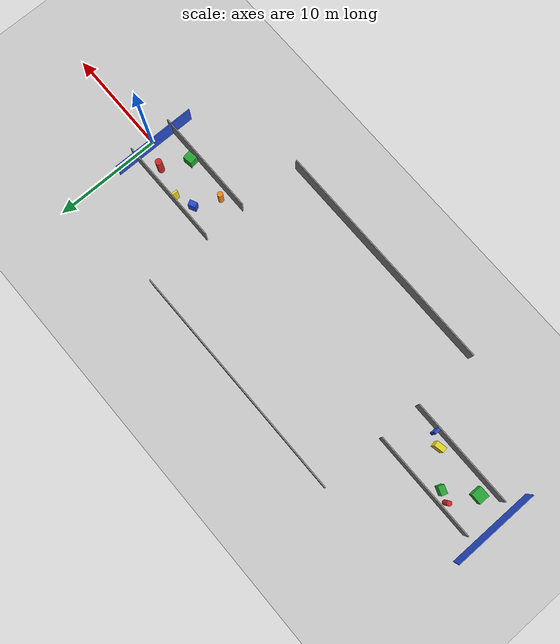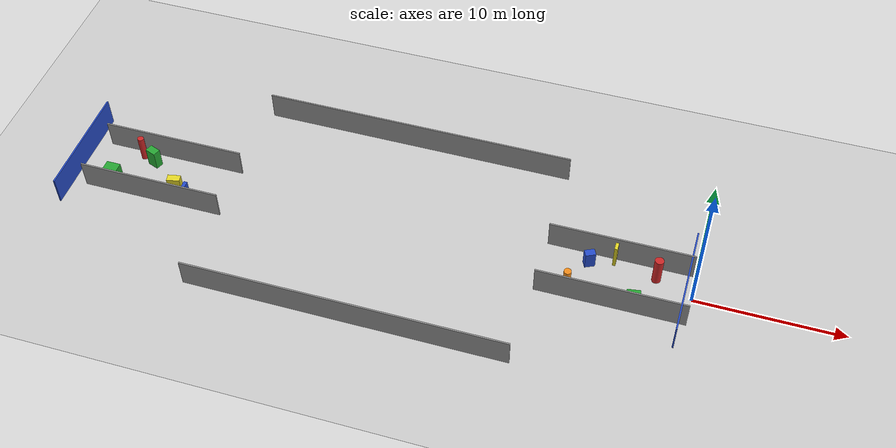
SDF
<?xml version="1.0" ?>
<sdf version="1.6">
  <world name="end_feature_wide_mid_world">
    <include><uri>model://sun</uri></include>
    <include><uri>model://ground_plane</uri></include>

    <!-- Narrow, feature-rich start zone -->
    <model name="start_left_wall">
      <static>true</static>
      <pose>-5.0 2.0 1.0 0 0 0</pose>
      <link name="link">
        <collision name="collision"><geometry><box><size>10.0 0.1 2.0</size></box></geometry></collision>
        <visual name="visual"><geometry><box><size>10.0 0.1 2.0</size></box></geometry><material><script><name>Gazebo/Grey</name></script></material></visual>
      </link>
    </model>

    <model name="start_right_wall">
      <static>true</static>
      <pose>-5.0 -2.0 1.0 0 0 0</pose>
      <link name="link">
        <collision name="collision"><geometry><box><size>10.0 0.1 2.0</size></box></geometry></collision>
        <visual name="visual"><geometry><box><size>10.0 0.1 2.0</size></box></geometry><material><script><name>Gazebo/Grey</name></script></material></visual>
      </link>
    </model>

    <!-- Wide, sparse middle zone: walls pushed outside 5m lidar range -->
    <model name="mid_left_wall_far">
      <static>true</static>
      <pose>-21.0 8.0 1.0 0 0 0</pose>
      <link name="link">
        <collision name="collision"><geometry><box><size>22.0 0.1 2.0</size></box></geometry></collision>
        <visual name="visual"><geometry><box><size>22.0 0.1 2.0</size></box></geometry><material><script><name>Gazebo/Grey</name></script></material></visual>
      </link>
    </model>

    <model name="mid_right_wall_far">
      <static>true</static>
      <pose>-21.0 -8.0 1.0 0 0 0</pose>
      <link name="link">
        <collision name="collision"><geometry><box><size>22.0 0.1 2.0</size></box></geometry></collision>
        <visual name="visual"><geometry><box><size>22.0 0.1 2.0</size></box></geometry><material><script><name>Gazebo/Grey</name></script></material></visual>
      </link>
    </model>

    <!-- Narrow, feature-rich goal zone -->
    <model name="goal_left_wall">
      <static>true</static>
      <pose>-37.0 2.0 1.0 0 0 0</pose>
      <link name="link">
        <collision name="collision"><geometry><box><size>10.0 0.1 2.0</size></box></geometry></collision>
        <visual name="visual"><geometry><box><size>10.0 0.1 2.0</size></box></geometry><material><script><name>Gazebo/Grey</name></script></material></visual>
      </link>
    </model>

    <model name="goal_right_wall">
      <static>true</static>
      <pose>-37.0 -2.0 1.0 0 0 0</pose>
      <link name="link">
        <collision name="collision"><geometry><box><size>10.0 0.1 2.0</size></box></geometry></collision>
        <visual name="visual"><geometry><box><size>10.0 0.1 2.0</size></box></geometry><material><script><name>Gazebo/Grey</name></script></material></visual>
      </link>
    </model>

    <model name="start_end_wall">
      <static>true</static>
      <pose>-0.5 0 1.0 0 0 0</pose>
      <link name="link">
        <collision name="collision"><geometry><box><size>0.1 8.0 2.0</size></box></geometry></collision>
        <visual name="visual"><geometry><box><size>0.1 8.0 2.0</size></box></geometry><material><script><name>Gazebo/Blue</name></script></material></visual>
      </link>
    </model>

    <model name="goal_end_wall">
      <static>true</static>
      <pose>-43.0 0 1.0 0 0 0</pose>
      <link name="link">
        <collision name="collision"><geometry><box><size>0.1 8.0 2.0</size></box></geometry></collision>
        <visual name="visual"><geometry><box><size>0.1 8.0 2.0</size></box></geometry><material><script><name>Gazebo/Blue</name></script></material></visual>
      </link>
    </model>

    <!-- Start zone features -->
    <model name="start_feature_cyl_left">
      <static>true</static>
      <pose>-2.5 1.0 1.0 0 0 0</pose>
      <link name="link">
        <collision name="collision"><geometry><cylinder><radius>0.3</radius><length>2.0</length></cylinder></geometry></collision>
        <visual name="visual"><geometry><cylinder><radius>0.3</radius><length>2.0</length></cylinder></geometry><material><script><name>Gazebo/Red</name></script></material></visual>
      </link>
    </model>

    <model name="start_feature_box_right">
      <static>true</static>
      <pose>-3.6 -1.45 0.55 0 0 0.15</pose>
      <link name="link">
        <collision name="collision"><geometry><box><size>0.9 0.8 1.1</size></box></geometry></collision>
        <visual name="visual"><geometry><box><size>0.9 0.8 1.1</size></box></geometry><material><script><name>Gazebo/Green</name></script></material></visual>
      </link>
    </model>

    <model name="start_feature_fin_left">
      <static>true</static>
      <pose>-5.4 1.65 0.85 0 0 0</pose>
      <link name="link">
        <collision name="collision"><geometry><box><size>0.2 0.55 1.7</size></box></geometry></collision>
        <visual name="visual"><geometry><box><size>0.2 0.55 1.7</size></box></geometry><material><script><name>Gazebo/Yellow</name></script></material></visual>
      </link>
    </model>

    <model name="start_feature_box_left">
      <static>true</static>
      <pose>-7.0 1.05 0.6 0 0 0.45</pose>
      <link name="link">
        <collision name="collision"><geometry><box><size>0.7 0.5 1.2</size></box></geometry></collision>
        <visual name="visual"><geometry><box><size>0.7 0.5 1.2</size></box></geometry><material><script><name>Gazebo/Blue</name></script></material></visual>
      </link>
    </model>

    <model name="start_feature_cyl_right">
      <static>true</static>
      <pose>-8.0 -1.2 0.8 0 0 0</pose>
      <link name="link">
        <collision name="collision"><geometry><cylinder><radius>0.25</radius><length>1.6</length></cylinder></geometry></collision>
        <visual name="visual"><geometry><cylinder><radius>0.25</radius><length>1.6</length></cylinder></geometry><material><script><name>Gazebo/Orange</name></script></material></visual>
      </link>
    </model>

    <!-- End zone features -->
    <model name="end_feature_fin_right">
      <static>true</static>
      <pose>-34.5 -1.68 0.95 0 0 0</pose>
      <link name="link">
        <collision name="collision"><geometry><box><size>0.25 0.55 1.9</size></box></geometry></collision>
        <visual name="visual"><geometry><box><size>0.25 0.55 1.9</size></box></geometry><material><script><name>Gazebo/Blue</name></script></material></visual>
      </link>
    </model>

    <model name="end_feature_box_right">
      <static>true</static>
      <pose>-35.6 -1.08 0.8 0 0 0.2</pose>
      <link name="link">
        <collision name="collision"><geometry><box><size>0.9 0.5 1.6</size></box></geometry></collision>
        <visual name="visual"><geometry><box><size>0.9 0.5 1.6</size></box></geometry><material><script><name>Gazebo/Yellow</name></script></material></visual>
      </link>
    </model>

    <model name="end_feature_box_left">
      <static>true</static>
      <pose>-38.2 1.05 0.7 0 0 -0.35</pose>
      <link name="link">
        <collision name="collision"><geometry><box><size>0.8 0.55 1.4</size></box></geometry></collision>
        <visual name="visual"><geometry><box><size>0.8 0.55 1.4</size></box></geometry><material><script><name>Gazebo/Green</name></script></material></visual>
      </link>
    </model>

    <model name="end_feature_cyl_left">
      <static>true</static>
      <pose>-39.2 1.42 0.95 0 0 0</pose>
      <link name="link">
        <collision name="collision"><geometry><cylinder><radius>0.22</radius><length>1.9</length></cylinder></geometry></collision>
        <visual name="visual"><geometry><cylinder><radius>0.22</radius><length>1.9</length></cylinder></geometry><material><script><name>Gazebo/Red</name></script></material></visual>
      </link>
    </model>

    <model name="end_feature_box_far_right">
      <static>true</static>
      <pose>-40.5 -1.0 0.5 0 0 0</pose>
      <link name="link">
        <collision name="collision"><geometry><box><size>1.0 1.0 1.0</size></box></geometry></collision>
        <visual name="visual"><geometry><box><size>1.0 1.0 1.0</size></box></geometry><material><script><name>Gazebo/Green</name></script></material></visual>
      </link>
    </model>
  </world>
</sdf>
